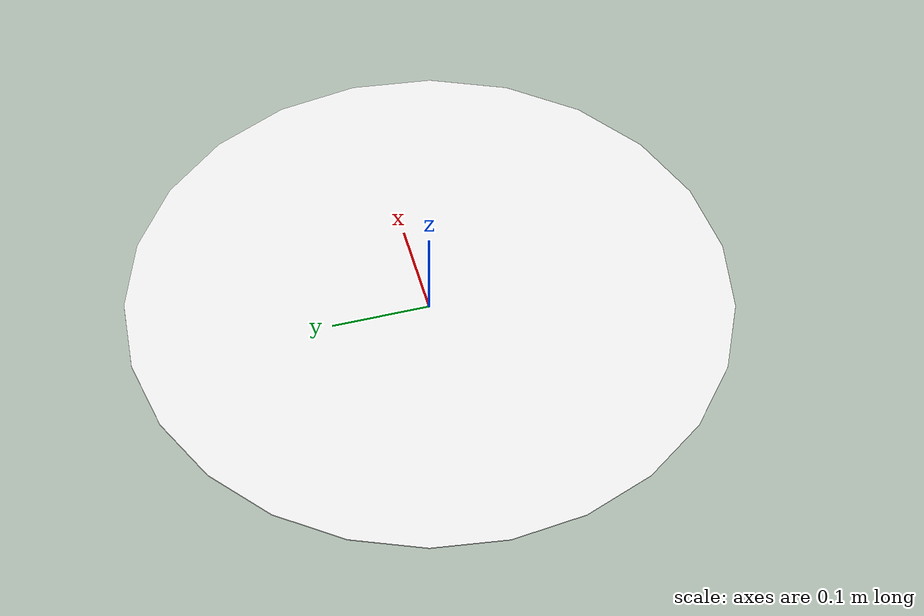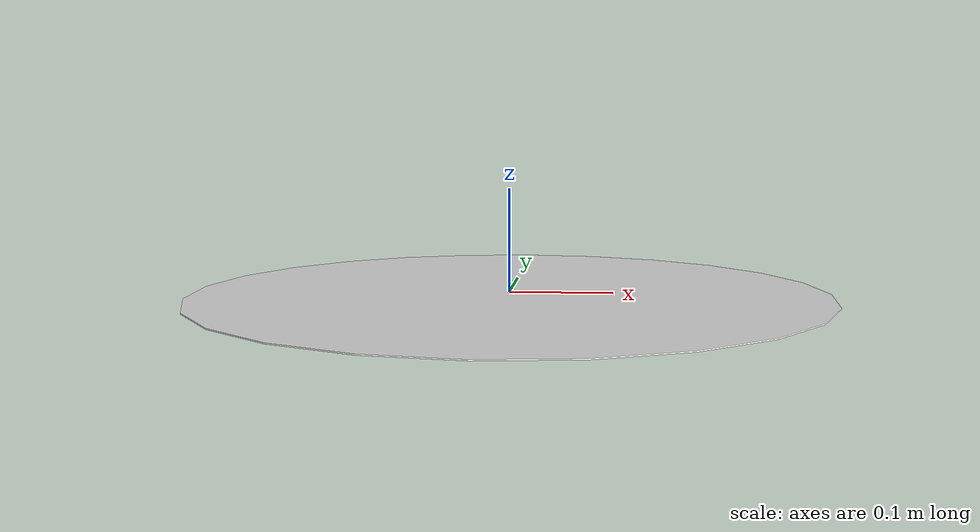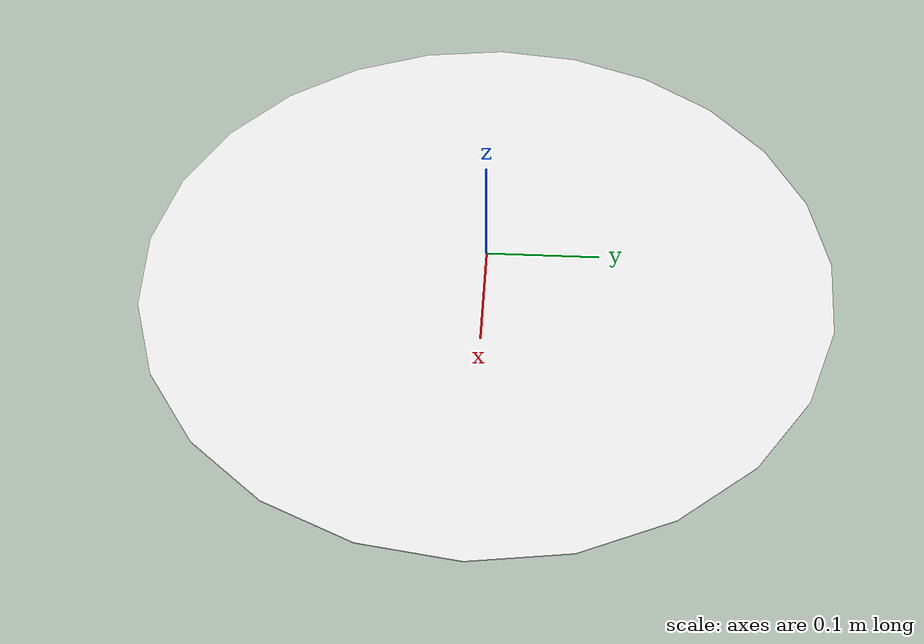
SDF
<?xml version="1.0"?>
<sdf version="1.4">
  <model name="Pothole">
    <static>true</static>
    <link name="link">
      <collision name="collision">
        <pose>0 0 -0.002 0 0 0</pose>
        <geometry>
          <box>
            <size>0.5 0.5 0.001</size>
          </box>
        </geometry>
      </collision>
      <visual name="pothole">
        <pose>0 0 0.001 0 0 0</pose>
        <cast_shadows>false</cast_shadows>
        <geometry>
          <cylinder>
            <radius>0.305</radius>
            <length>0.001</length>
          </cylinder>
        </geometry>
        <material>
          <ambient>1 1 1 1</ambient>
          <diffuse>1 1 1 1</diffuse>
          <specular>0.5 0.5 0.5 1</specular>
        </material>
      </visual>
    </link>
  </model>
</sdf>
